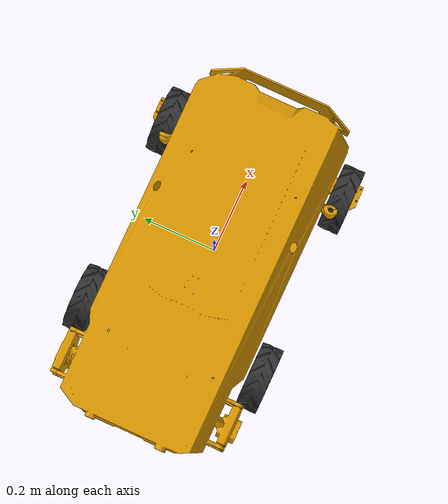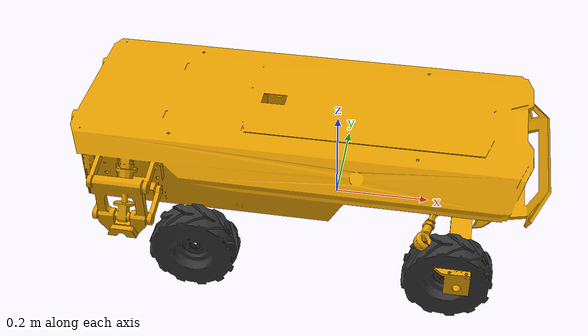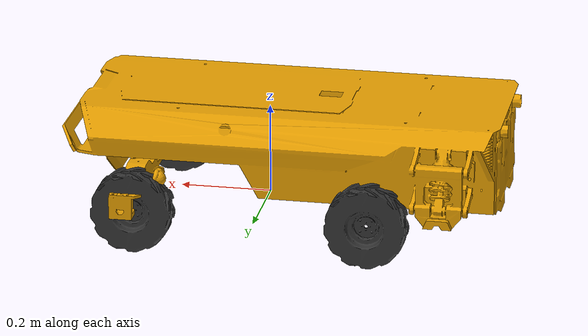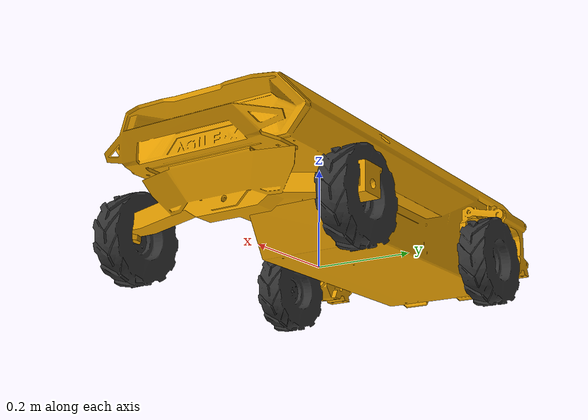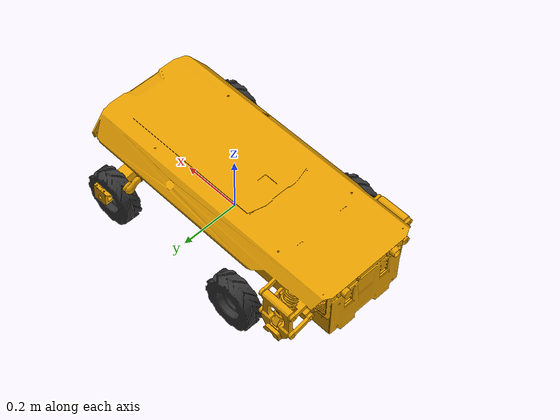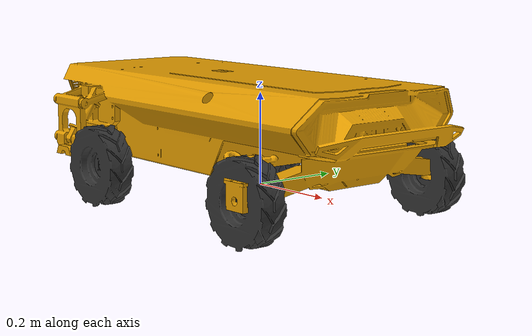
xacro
<?xml version="1.0"?>
<robot xmlns:xacro="http://www.ros.org/wiki/xacro"  name="robot">
    <xacro:arg name="prefix" default="" />
    <xacro:arg name="use_ros2_control" default="true"/>
    <xacro:arg name="is_sim" default="true"/>
    <xacro:include filename="$(find hunter_description)/description/hunter_core.urdf.xacro"/>
    <xacro:dogbot prefix="$(arg prefix)" is_sim="$(arg is_sim)"/>
    <xacro:if value="$(arg use_ros2_control)">
        <xacro:include filename="$(find hunter_description)/description/ros2_control.xacro" />
    </xacro:if>
    <xacro:unless value="$(arg use_ros2_control)">
        <xacro:include filename="$(find hunter_description)/description/gazebo_control.xacro" />
    </xacro:unless>

</robot>

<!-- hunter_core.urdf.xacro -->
<robot xmlns:xacro="http://www.ros.org/wiki/xacro" >
<xacro:include filename="$(find hunter_description)/description/wheel.urdf.xacro"/>
<xacro:macro name="dogbot" params="prefix:='' is_sim:=true">
     <!-- Base Size -->
    <xacro:property name="base_x_size" value="0.98740000" />
    <xacro:property name="base_y_size" value="0.57090000" />
    <xacro:property name="base_z_size" value="0.24750000" />

    <!-- Wheel Mounting Positions -->
    <xacro:property name="wheelbase" value="0.5120" />
    <xacro:property name="track" value="0.4908" />   <!-- Original 0.5708, after 0.4908 -->
    <xacro:property name="wheel_vertical_offset" value="0.03282" />

    <!-- Wheel Properties -->
    <xacro:property name="wheel_length" value="0.27" />
    <xacro:property name="wheel_radius" value="0.137" />

    <xacro:property name="hunter_front_bumper_extend" value="0" />
    <xacro:property name="hunter_rear_bumper_extend" value="0" />

    <xacro:property name="M_PI" value="3.14159"/>

    <!-- Base link is the center of the robot's bottom plate -->

    <link name="${prefix}base_link">
      <visual>
        <origin xyz="-0.05 0 0.12" rpy="0 0 0" />  <!-- HERREEEEE-->
        <geometry>
          <mesh filename="file://$(find hunter_description)/meshes/chassis.dae" />
        </geometry>
      </visual>
      <collision>
        <origin xyz="${( hunter_front_bumper_extend - hunter_rear_bumper_extend ) / 2.0} 0 ${base_z_size/4}" rpy="0 0 0" />
        <geometry>
          <box size="${ base_x_size + hunter_front_bumper_extend + hunter_rear_bumper_extend } ${base_y_size} ${base_z_size/2}"/>
        </geometry>
      </collision>
      <collision>
        <origin xyz="0 0 ${base_z_size*3/4-0.01}" rpy="0 0 0" />
        <geometry>
          <box size="${base_x_size*4/5} ${base_y_size} ${base_z_size/2-0.02}"/>
        </geometry>
      </collision>
    </link>

    <!-- Base footprint is on the ground under the robot -->
    <link name="${prefix}base_footprint"/>

    <joint name="${prefix}base_footprint_joint" type="fixed">
      <origin xyz="0 0 ${wheel_vertical_offset - wheel_radius}" rpy="0 0 0" />
      <parent link="${prefix}base_link" />
      <child link="${prefix}base_footprint" />
    </joint>

    <!-- Inertial link stores the robot's inertial information -->
    <link name="${prefix}inertial_link">
      <inertial>
        <mass value="1.034" />
        <origin xyz="-0.00065 -0.085 0.062" />
        <inertia ixx="0.6022" ixy="-0.02364" ixz="-0.1197" iyy="1.7386" iyz="-0.001544" izz="2.0296" />
      </inertial>
    </link>

    <joint name="${prefix}inertial_joint" type="fixed">
      <origin xyz="0 0 0" rpy="0 0 0" />
      <parent link="${prefix}base_link" />
      <child link="${prefix}inertial_link" />
    </joint>

    <xacro:hunter_wheel wheel_prefix="${prefix}front_left" x="${wheelbase/2}" y="${track/2}" z="${wheel_vertical_offset}" is_sim="${is_sim}"/>
    <xacro:hunter_wheel wheel_prefix="${prefix}front_right" x="${wheelbase/2}" y="${-track/2}" z="${wheel_vertical_offset}" is_sim="${is_sim}"/>
    <xacro:hunter_wheel wheel_prefix="${prefix}back_left" x="${-wheelbase/2}" y="${track/2}" z="${wheel_vertical_offset}" is_sim="${is_sim}"/>
    <xacro:hunter_wheel wheel_prefix="${prefix}back_right" x="${-wheelbase/2}" y="${-track/2}" z="${wheel_vertical_offset}" is_sim="${is_sim}"/>
</xacro:macro>
</robot>

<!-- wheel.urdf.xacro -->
<robot xmlns:xacro="http://ros.org/wiki/xacro" name="hunter_wheel">

  <xacro:macro name="hunter_wheel" params="wheel_prefix x y z roll:=0.0 pitch:=0.0 yaw:=0.0 is_sim:=true">
    <link name="${wheel_prefix}_wheel">
      <inertial>
        <mass value="4.71327697475564" />
        <origin xyz="0 0 0" />
        <inertia  ixx="0.110728822762987" ixy="-2.65377659117968E-08" ixz="-5.98702902432139E-08" iyy="0.0637297556516867" iyz="2.53851903686626E-07" izz="0.0637296696516031" />
      </inertial>
      <visual>
        <origin xyz="0 0 0" rpy="0 0 0" />
        <geometry>
          <mesh filename="file://$(find hunter_description)/meshes/wheel.dae" />
        </geometry>
      </visual>
      <collision>
        <origin xyz="0 0 0" rpy="${M_PI/2} 0 0" />
        <geometry>
          <cylinder length="${wheel_length}" radius="${wheel_radius}" />
        </geometry>
      </collision>
    </link>

  <xacro:if value="${is_sim}">
      <joint name="${wheel_prefix}_wheel_joint" type="continuous">
      <parent link="base_link"/>
      <child link="${wheel_prefix}_wheel"/>
      <origin xyz="${x} ${y} ${z}" rpy="${roll} ${pitch} ${yaw}"/>
      <axis xyz="0 1 0" rpy="0 0 0" />
    </joint>
    <gazebo reference="${wheel_prefix}_wheel">
      <mu1 value="1.0"/>
      <mu2 value="0.5"/>
      <kp value="10000000.0" />
      <kd value="1.0" />
      <fdir1 value="1 0 0"/>
    </gazebo>
  </xacro:if>

  <xacro:unless value="${is_sim}">
    <joint name="${wheel_prefix}_wheel_joint" type="fixed">
      <parent link="base_link"/>
      <child link="${wheel_prefix}_wheel"/>
      <origin xyz="${x} ${y} ${z}" rpy="${roll} ${pitch} ${yaw}"/>
      <axis xyz="0 1 0" rpy="0 0 0" />
    </joint>
  </xacro:unless>

  </xacro:macro>
</robot>
